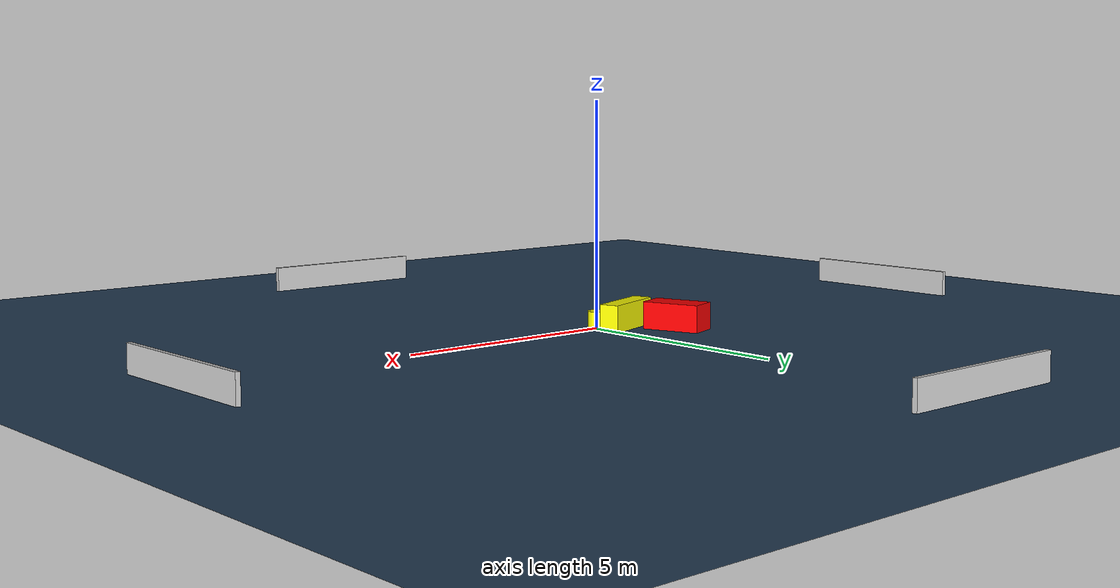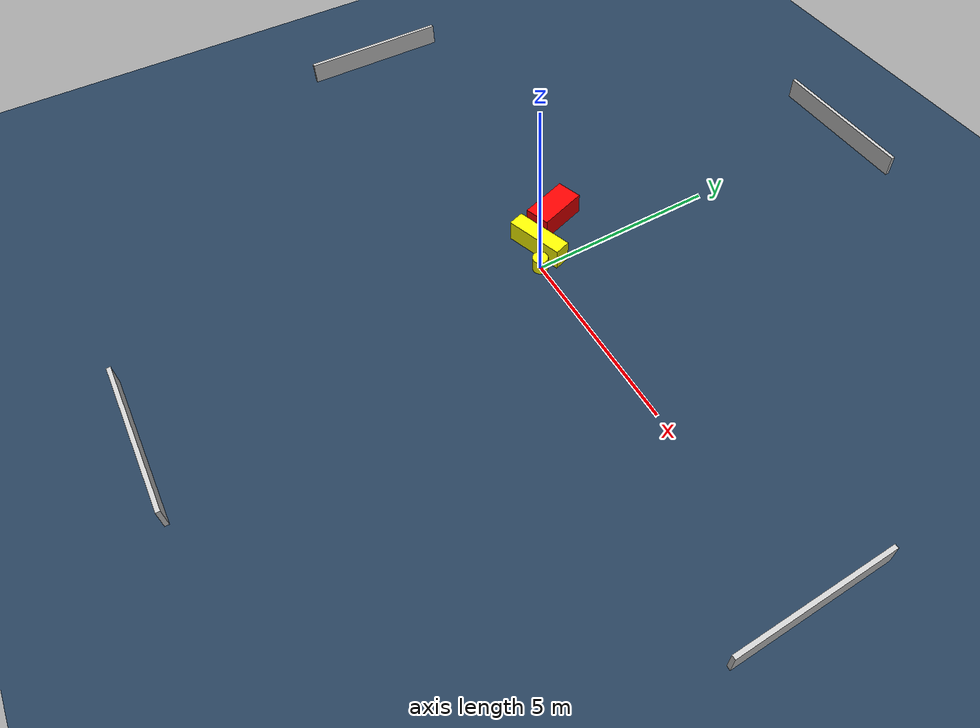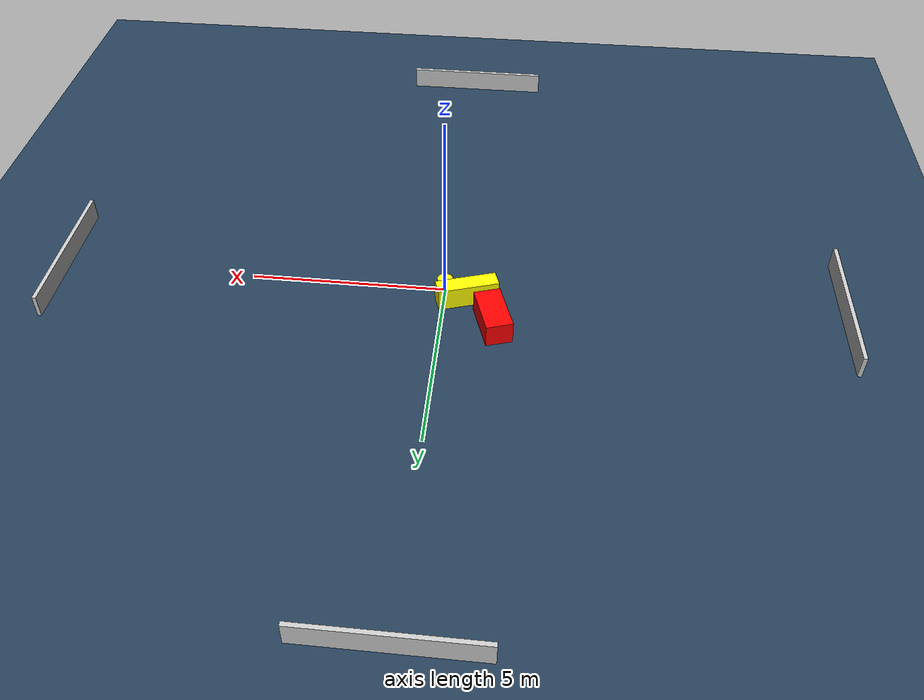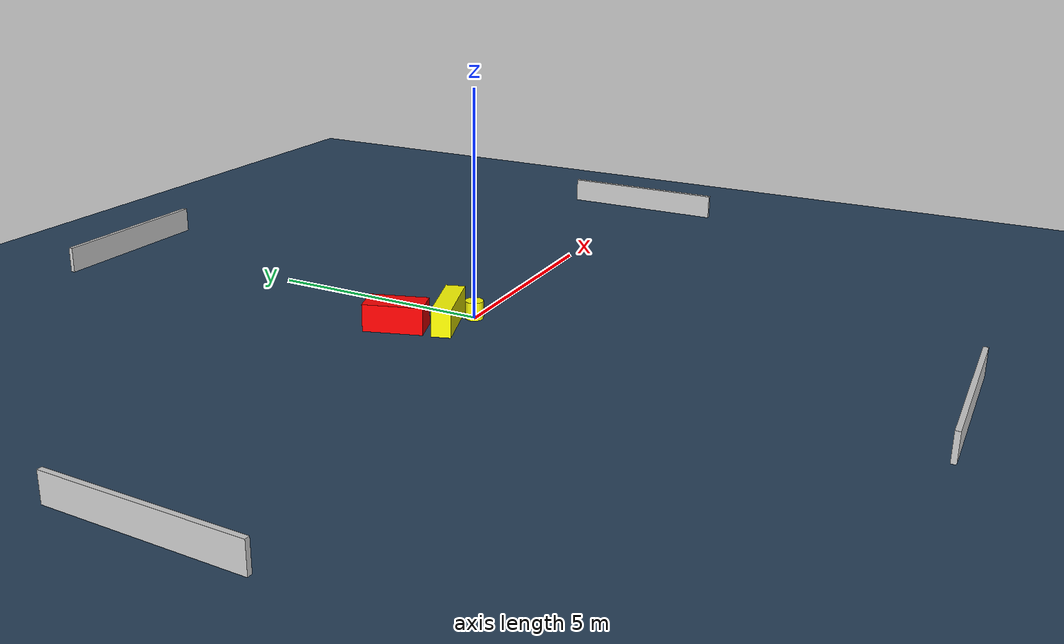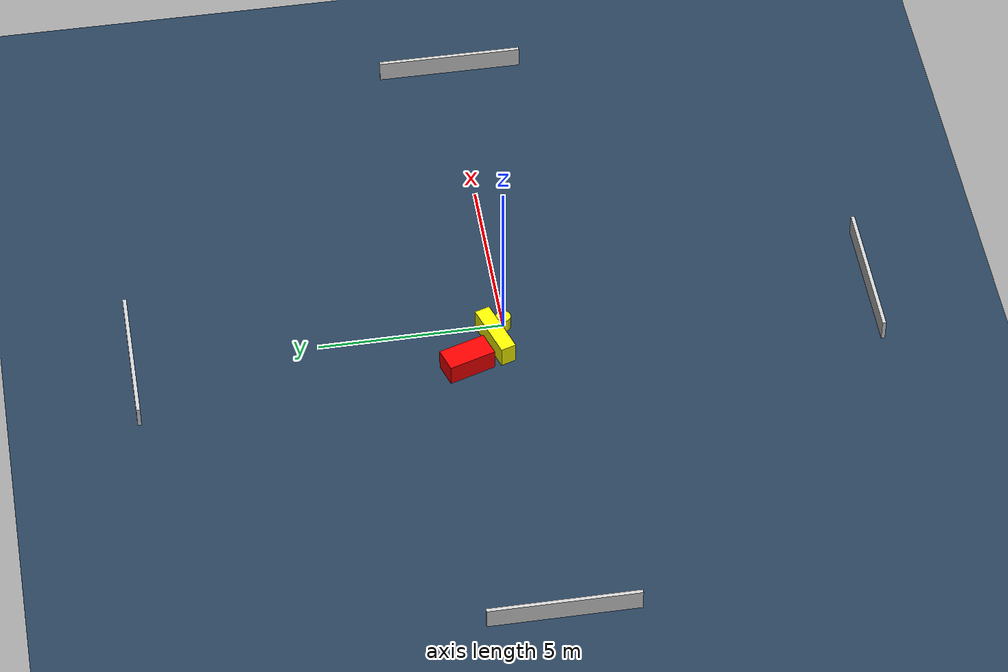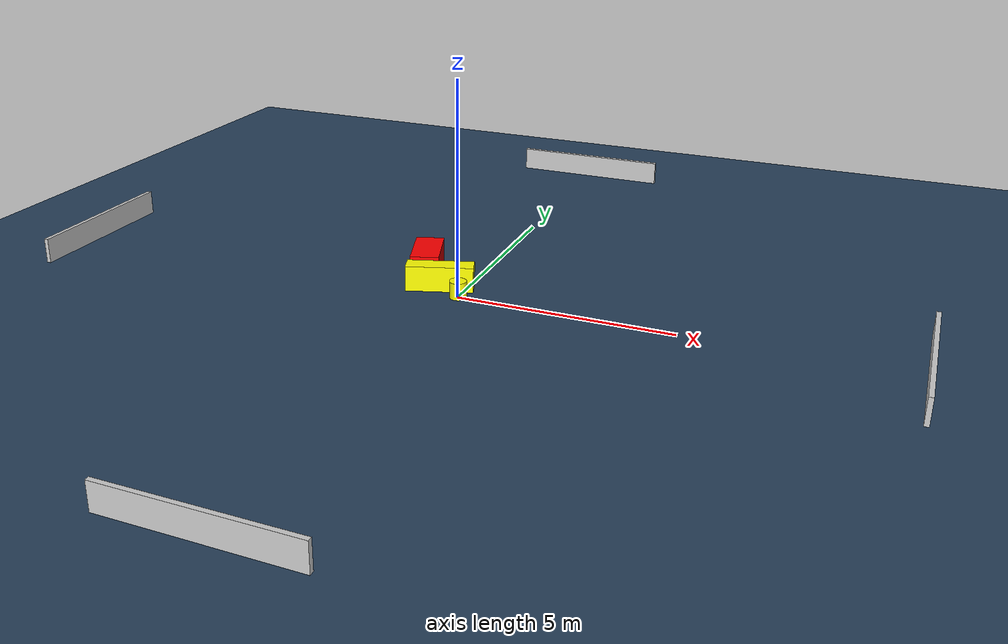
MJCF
<?xml version="1.0" ?>
<mujoco model="generated_environment">
  <option timestep="0.01" integrator="RK4" cone="elliptic"/>
  <default>
    <geom density="1"/>
  </default>
  <asset>
    <texture builtin="gradient" height="3072" name="skybox" rgb1="0.3 0.5 0.7" rgb2="0 0 0" type="skybox" width="512"/>
    <texture builtin="checker" height="300" name="groundplane" rgb1="0.2 0.3 0.4" rgb2="0.1 0.2 0.3" type="2d" width="300"/>
    <material name="groundplane" reflectance="0.2" texrepeat="5 5" texture="groundplane"/>
  </asset>
  <worldbody>
    <light dir="0 0 -1" directional="true" pos="0 0 1.5"/>
    <geom condim="3" friction="0.5 0.005 0.001" material="groundplane" name="floor" pos="0 0 0" size="0 0 0.05" type="plane"/>
    <body name="walls">
      <geom name="wall_1" condim="4" pos="-10.0 0.0 0.3" rgba="0.800000011920929 0.800000011920929 0.800000011920929 1.0" size="0.05 2.0 0.3" type="box"/>
      <geom name="wall_2" condim="4" pos="10.0 0.0 0.3" rgba="0.800000011920929 0.800000011920929 0.800000011920929 1.0" size="0.05 2.0 0.3" type="box"/>
      <geom name="wall_3" condim="4" pos="0.0 -10.0 0.3" rgba="0.800000011920929 0.800000011920929 0.800000011920929 1.0" size="2.0 0.05 0.3" type="box"/>
      <geom name="wall_4" condim="4" pos="0.0 10.0 0.3" rgba="0.800000011920929 0.800000011920929 0.800000011920929 1.0" size="2.0 0.05 0.3" type="box"/>
    </body>
    <body name="robot">
      <joint name="joint_x" type="slide" pos="0 0 0" axis="1 0 0"/>
      <joint name="joint_y" type="slide" pos="0 0 0" axis="0 1 0"/>
      <geom name="robot" type="cylinder" pos="0.0 0.0 0.2" size="0.2 0.2 0.0" mass="5.0" friction="1.0 0.005 0.0001" condim="4" rgba="1.0 1.0 0.0 1.0"/>
    </body>
    <body name="obstacle_1_movable">
      <geom name="obstacle_1_movable" condim="4" pos="-0.5825460377011202 0.3093813921572426 0.3" euler="0 0 18.30002071598271" friction="0.0 0.005 0.001" rgba="1.0 1.0 0.0 1.0" size="0.7804618972547954 0.2133228123519716 0.3" type="box" mass="0.1"/>
      <joint type="free"/>
    </body>
    <body name="obstacle_2_static">
      <geom name="obstacle_2_static" condim="4" pos="-1.2986626894560698 1.175118387454974 0.3" euler="0 0 18.18827625255664" friction="0.0 0.005 0.001" rgba="1.0 0.0 0.0 1.0" size="0.33741802946807975 0.6523573857317944 0.3" type="box"/>
    </body>
  </worldbody>
  <actuator>
    <motor name="actuator_x" joint="joint_x" gear="1" ctrlrange="-1 1"/>
    <motor name="actuator_y" joint="joint_y" gear="1" ctrlrange="-1 1"/>
  </actuator>
</mujoco>
